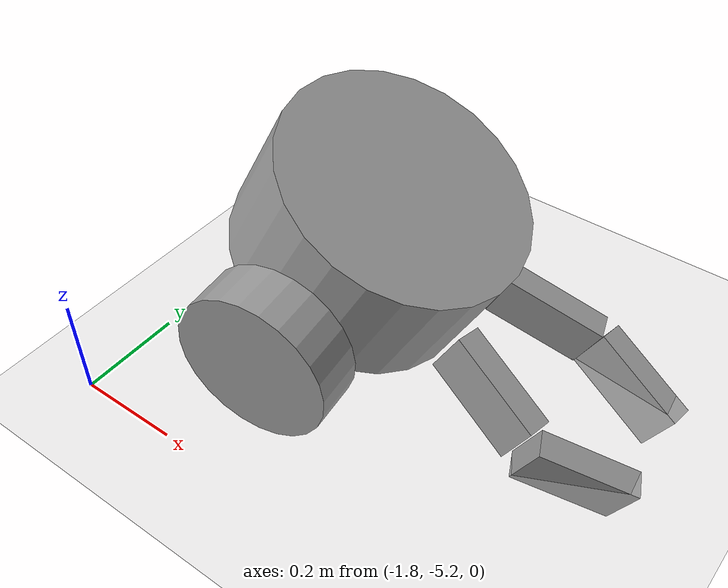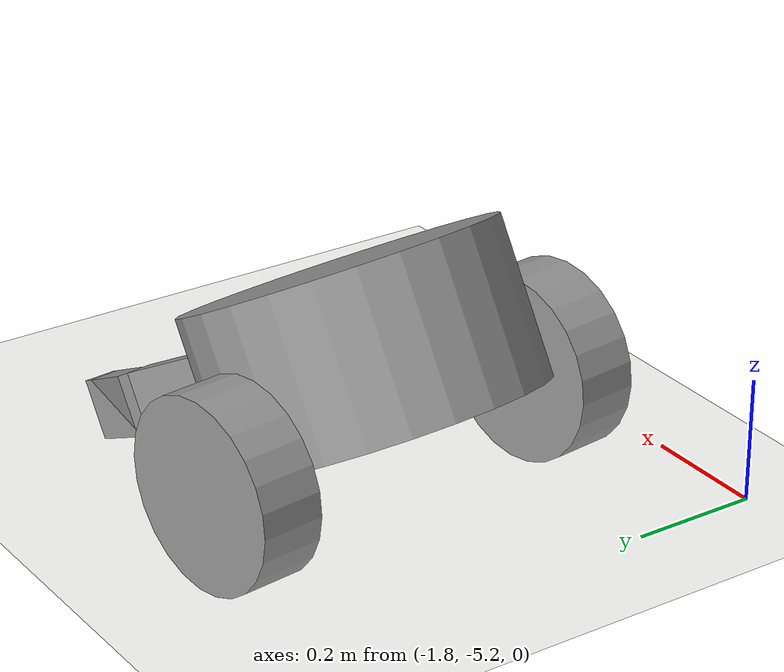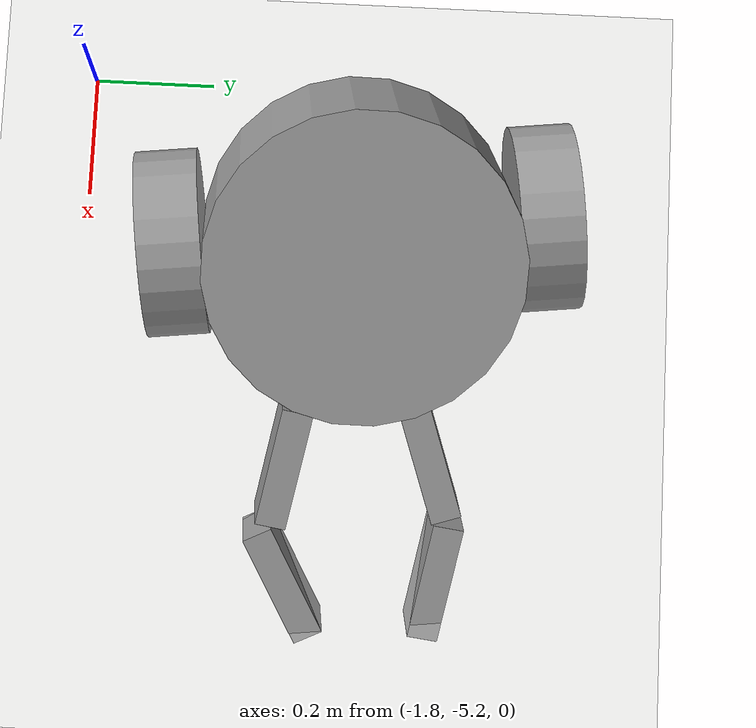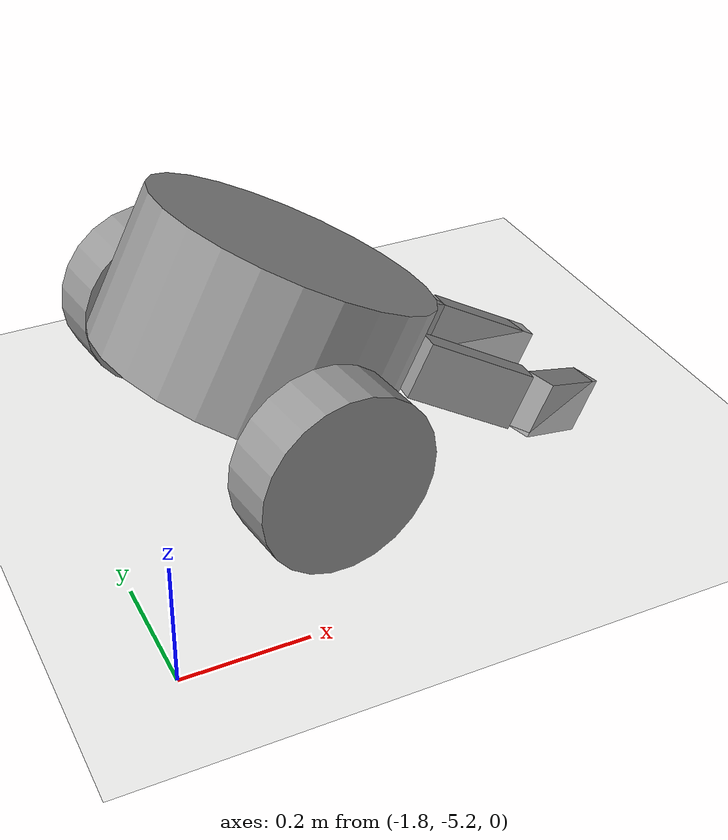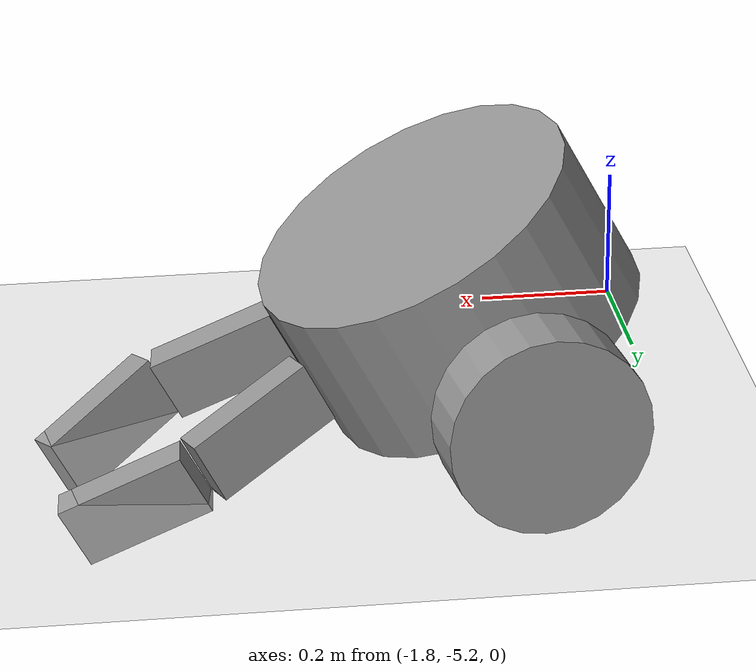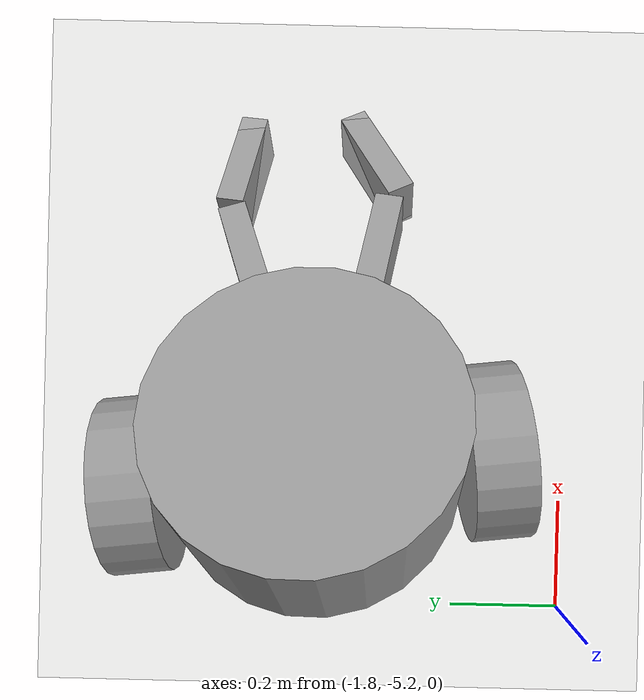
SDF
<sdf version="1.6">
 <world name="default">
  <model name="ground_plane">
   <static>1</static>
   <link name="link">
    <collision name="collision">
     <geometry><plane><normal>0 0 1</normal><size>100 100</size></plane></geometry>
     <surface><friction><ode><mu>100</mu><mu2>50</mu2></ode></friction></surface>
    </collision>
    <visual name="visual">
     <cast_shadows>0</cast_shadows>
     <geometry><plane><normal>0 0 1</normal><size>100 100</size></plane></geometry>
     <material>
      <script><uri>file://media/materials/scripts/gazebo.material</uri><name>Gazebo/Grey</name></script>
     </material>
    </visual>
   </link>
  </model>
  <model name="clawrobot">
   <link name="link_0">
    <pose>-0.255901 0.018867 0.029197 0 -0 0</pose>
    <inertial>
     <mass>1</mass>
     <inertia><ixx>0.145833</ixx><ixy>0</ixy><ixz>0</ixz><iyy>0.145833</iyy><iyz>0</iyz><izz>0.125</izz></inertia>
    </inertial>
    <visual name="visual">
     <geometry><cylinder><radius>0.25</radius><length>0.25</length></cylinder></geometry>
     <material>
      <lighting>1</lighting>
      <script><uri>file://media/materials/scripts/gazebo.material</uri><name>Gazebo/Grey</name></script>
      <shader type="pixel"><normal_map>__default__</normal_map></shader>
      <ambient>0.3 0.3 0.3 1</ambient>
      <diffuse>0.7 0.7 0.7 1</diffuse>
      <specular>0.01 0.01 0.01 1</specular>
      <emissive>0 0 0 1</emissive>
     </material>
    </visual>
    <collision name="collision">
     <geometry><cylinder><radius>0.25</radius><length>0.25</length></cylinder></geometry>
     <surface>
      <friction>
       <ode><mu>1</mu><mu2>1</mu2><fdir1>0 0 0</fdir1><slip1>0</slip1><slip2>0</slip2></ode>
       <torsional>
        <coefficient>1</coefficient>
        <patch_radius>0</patch_radius>
        <surface_radius>0</surface_radius>
        <use_patch_radius>1</use_patch_radius>
        <ode><slip>0</slip></ode>
       </torsional>
      </friction>
      <bounce><restitution_coefficient>0</restitution_coefficient><threshold>1e+06</threshold></bounce>
      <contact>
       <collide_without_contact>0</collide_without_contact>
       <collide_without_contact_bitmask>1</collide_without_contact_bitmask>
       <collide_bitmask>1</collide_bitmask>
       <ode>
        <soft_cfm>0</soft_cfm>
        <soft_erp>0.2</soft_erp>
        <kp>1e+13</kp>
        <kd>1</kd>
        <max_vel>0.01</max_vel>
        <min_depth>0</min_depth>
       </ode>
       <bullet>
        <split_impulse>1</split_impulse>
        <split_impulse_penetration_threshold>-0.01</split_impulse_penetration_threshold>
        <soft_cfm>0</soft_cfm>
        <soft_erp>0.2</soft_erp>
        <kp>1e+13</kp>
        <kd>1</kd>
       </bullet>
      </contact>
     </surface>
    </collision>
   </link>
   <link name="link_2">
    <pose>-0.255901 -0.281147 -0.083741 1.5707 -0 0</pose>
    <inertial>
     <mass>1</mass>
     <inertia><ixx>0.145833</ixx><ixy>0</ixy><ixz>0</ixz><iyy>0.145833</iyy><iyz>0</iyz><izz>0.125</izz></inertia>
    </inertial>
    <visual name="visual">
     <geometry><cylinder><radius>0.15</radius><length>0.1</length></cylinder></geometry>
     <material>
      <lighting>1</lighting>
      <script><uri>file://media/materials/scripts/gazebo.material</uri><name>Gazebo/Grey</name></script>
      <shader type="pixel"><normal_map>__default__</normal_map></shader>
      <ambient>0.3 0.3 0.3 1</ambient>
      <diffuse>0.7 0.7 0.7 1</diffuse>
      <specular>0.01 0.01 0.01 1</specular>
      <emissive>0 0 0 1</emissive>
     </material>
    </visual>
    <collision name="collision">
     <geometry><cylinder><radius>0.15</radius><length>0.1</length></cylinder></geometry>
     <surface>
      <friction>
       <ode><mu>1</mu><mu2>1</mu2><fdir1>0 0 0</fdir1><slip1>0</slip1><slip2>0</slip2></ode>
       <torsional>
        <coefficient>1</coefficient>
        <patch_radius>0</patch_radius>
        <surface_radius>0</surface_radius>
        <use_patch_radius>1</use_patch_radius>
        <ode><slip>0</slip></ode>
       </torsional>
      </friction>
      <bounce><restitution_coefficient>0</restitution_coefficient><threshold>1e+06</threshold></bounce>
      <contact>
       <collide_without_contact>0</collide_without_contact>
       <collide_without_contact_bitmask>1</collide_without_contact_bitmask>
       <collide_bitmask>1</collide_bitmask>
       <ode>
        <soft_cfm>0</soft_cfm>
        <soft_erp>0.2</soft_erp>
        <kp>1e+13</kp>
        <kd>1</kd>
        <max_vel>0.01</max_vel>
        <min_depth>0</min_depth>
       </ode>
       <bullet>
        <split_impulse>1</split_impulse>
        <split_impulse_penetration_threshold>-0.01</split_impulse_penetration_threshold>
        <soft_cfm>0</soft_cfm>
        <soft_erp>0.2</soft_erp>
        <kp>1e+13</kp>
        <kd>1</kd>
       </bullet>
      </contact>
     </surface>
    </collision>
   </link>
   <link name="link_2_clone">
    <pose>-0.255901 0.318882 -0.083741 1.5707 -0 0</pose>
    <inertial>
     <mass>1</mass>
     <inertia><ixx>0.145833</ixx><ixy>0</ixy><ixz>0</ixz><iyy>0.145833</iyy><iyz>0</iyz><izz>0.125</izz></inertia>
    </inertial>
    <visual name="visual">
     <geometry><cylinder><radius>0.15</radius><length>0.1</length></cylinder></geometry>
     <material>
      <lighting>1</lighting>
      <script><uri>file://media/materials/scripts/gazebo.material</uri><name>Gazebo/Grey</name></script>
      <shader type="pixel"><normal_map>__default__</normal_map></shader>
      <ambient>0.3 0.3 0.3 1</ambient>
      <diffuse>0.7 0.7 0.7 1</diffuse>
      <specular>0.01 0.01 0.01 1</specular>
      <emissive>0 0 0 1</emissive>
     </material>
    </visual>
    <collision name="collision">
     <geometry><cylinder><radius>0.15</radius><length>0.1</length></cylinder></geometry>
     <surface>
      <friction>
       <ode><mu>1</mu><mu2>1</mu2><fdir1>0 0 0</fdir1><slip1>0</slip1><slip2>0</slip2></ode>
       <torsional>
        <coefficient>1</coefficient>
        <patch_radius>0</patch_radius>
        <surface_radius>0</surface_radius>
        <use_patch_radius>1</use_patch_radius>
        <ode><slip>0</slip></ode>
       </torsional>
      </friction>
      <bounce><restitution_coefficient>0</restitution_coefficient><threshold>1e+06</threshold></bounce>
      <contact>
       <collide_without_contact>0</collide_without_contact>
       <collide_without_contact_bitmask>1</collide_without_contact_bitmask>
       <collide_bitmask>1</collide_bitmask>
       <ode>
        <soft_cfm>0</soft_cfm>
        <soft_erp>0.2</soft_erp>
        <kp>1e+13</kp>
        <kd>1</kd>
        <max_vel>0.01</max_vel>
        <min_depth>0</min_depth>
       </ode>
       <bullet>
        <split_impulse>1</split_impulse>
        <split_impulse_penetration_threshold>-0.01</split_impulse_penetration_threshold>
        <soft_cfm>0</soft_cfm>
        <soft_erp>0.2</soft_erp>
        <kp>1e+13</kp>
        <kd>1</kd>
       </bullet>
      </contact>
     </surface>
    </collision>
   </link>
   <link name="link_3">
    <pose>0.085126 -0.126526 0.034572 0 0 -0.293233</pose>
    <inertial>
     <mass>1</mass>
     <inertia>
      <ixx>0.166667</ixx>
      <ixy>0</ixy>
      <ixz>0</ixz>
      <iyy>0.166667</iyy>
      <iyz>0</iyz>
      <izz>0.166667</izz>
     </inertia>
    </inertial>
    <visual name="visual">
     <geometry><box><size>0.2 0.05 0.1</size></box></geometry>
     <material>
      <lighting>1</lighting>
      <script><uri>file://media/materials/scripts/gazebo.material</uri><name>Gazebo/Grey</name></script>
      <shader type="pixel"><normal_map>__default__</normal_map></shader>
      <ambient>0.3 0.3 0.3 1</ambient>
      <diffuse>0.7 0.7 0.7 1</diffuse>
      <specular>0.01 0.01 0.01 1</specular>
      <emissive>0 0 0 1</emissive>
     </material>
    </visual>
    <collision name="collision">
     <geometry><box><size>0.2 0.05 0.1</size></box></geometry>
     <surface>
      <friction>
       <ode><mu>1</mu><mu2>1</mu2><fdir1>0 0 0</fdir1><slip1>0</slip1><slip2>0</slip2></ode>
       <torsional>
        <coefficient>1</coefficient>
        <patch_radius>0</patch_radius>
        <surface_radius>0</surface_radius>
        <use_patch_radius>1</use_patch_radius>
        <ode><slip>0</slip></ode>
       </torsional>
      </friction>
      <bounce><restitution_coefficient>0</restitution_coefficient><threshold>1e+06</threshold></bounce>
      <contact>
       <collide_without_contact>0</collide_without_contact>
       <collide_without_contact_bitmask>1</collide_without_contact_bitmask>
       <collide_bitmask>1</collide_bitmask>
       <ode>
        <soft_cfm>0</soft_cfm>
        <soft_erp>0.2</soft_erp>
        <kp>1e+13</kp>
        <kd>1</kd>
        <max_vel>0.01</max_vel>
        <min_depth>0</min_depth>
       </ode>
       <bullet>
        <split_impulse>1</split_impulse>
        <split_impulse_penetration_threshold>-0.01</split_impulse_penetration_threshold>
        <soft_cfm>0</soft_cfm>
        <soft_erp>0.2</soft_erp>
        <kp>1e+13</kp>
        <kd>1</kd>
       </bullet>
      </contact>
     </surface>
    </collision>
   </link>
   <link name="link_3_clone">
    <pose>0.093783 0.107082 0.034572 -0.002709 -0.012513 0.213214</pose>
    <inertial>
     <mass>1</mass>
     <inertia>
      <ixx>0.166667</ixx>
      <ixy>0</ixy>
      <ixz>0</ixz>
      <iyy>0.166667</iyy>
      <iyz>0</iyz>
      <izz>0.166667</izz>
     </inertia>
    </inertial>
    <visual name="visual">
     <geometry><box><size>0.2 0.05 0.1</size></box></geometry>
     <material>
      <lighting>1</lighting>
      <script><uri>file://media/materials/scripts/gazebo.material</uri><name>Gazebo/Grey</name></script>
      <shader type="pixel"><normal_map>__default__</normal_map></shader>
      <ambient>0.3 0.3 0.3 1</ambient>
      <diffuse>0.7 0.7 0.7 1</diffuse>
      <specular>0.01 0.01 0.01 1</specular>
      <emissive>0 0 0 1</emissive>
     </material>
    </visual>
    <collision name="collision">
     <geometry><box><size>0.2 0.05 0.1</size></box></geometry>
     <surface>
      <friction>
       <ode><mu>1</mu><mu2>1</mu2><fdir1>0 0 0</fdir1><slip1>0</slip1><slip2>0</slip2></ode>
       <torsional>
        <coefficient>1</coefficient>
        <patch_radius>0</patch_radius>
        <surface_radius>0</surface_radius>
        <use_patch_radius>1</use_patch_radius>
        <ode><slip>0</slip></ode>
       </torsional>
      </friction>
      <bounce><restitution_coefficient>0</restitution_coefficient><threshold>1e+06</threshold></bounce>
      <contact>
       <collide_without_contact>0</collide_without_contact>
       <collide_without_contact_bitmask>1</collide_without_contact_bitmask>
       <collide_bitmask>1</collide_bitmask>
       <ode>
        <soft_cfm>0</soft_cfm>
        <soft_erp>0.2</soft_erp>
        <kp>1e+13</kp>
        <kd>1</kd>
        <max_vel>0.01</max_vel>
        <min_depth>0</min_depth>
       </ode>
       <bullet>
        <split_impulse>1</split_impulse>
        <split_impulse_penetration_threshold>-0.01</split_impulse_penetration_threshold>
        <soft_cfm>0</soft_cfm>
        <soft_erp>0.2</soft_erp>
        <kp>1e+13</kp>
        <kd>1</kd>
       </bullet>
      </contact>
     </surface>
    </collision>
   </link>
   <link name="link_3_clone_0">
    <pose>0.287516 -0.142576 0.034572 0 -0 0.359319</pose>
    <inertial>
     <mass>1</mass>
     <inertia>
      <ixx>0.166667</ixx>
      <ixy>0</ixy>
      <ixz>0</ixz>
      <iyy>0.166667</iyy>
      <iyz>0</iyz>
      <izz>0.166667</izz>
     </inertia>
    </inertial>
    <visual name="visual">
     <geometry><box><size>0.2 0.05 0.1</size></box></geometry>
     <material>
      <lighting>1</lighting>
      <script><uri>file://media/materials/scripts/gazebo.material</uri><name>Gazebo/Grey</name></script>
      <shader type="pixel"><normal_map>__default__</normal_map></shader>
      <ambient>0.3 0.3 0.3 1</ambient>
      <diffuse>0.7 0.7 0.7 1</diffuse>
      <specular>0.01 0.01 0.01 1</specular>
      <emissive>0 0 0 1</emissive>
     </material>
    </visual>
    <collision name="collision">
     <geometry><box><size>0.2 0.05 0.1</size></box></geometry>
     <surface>
      <friction>
       <ode><mu>1</mu><mu2>1</mu2><fdir1>0 0 0</fdir1><slip1>0</slip1><slip2>0</slip2></ode>
       <torsional>
        <coefficient>1</coefficient>
        <patch_radius>0</patch_radius>
        <surface_radius>0</surface_radius>
        <use_patch_radius>1</use_patch_radius>
        <ode><slip>0</slip></ode>
       </torsional>
      </friction>
      <bounce><restitution_coefficient>0</restitution_coefficient><threshold>1e+06</threshold></bounce>
      <contact>
       <collide_without_contact>0</collide_without_contact>
       <collide_without_contact_bitmask>1</collide_without_contact_bitmask>
       <collide_bitmask>1</collide_bitmask>
       <ode>
        <soft_cfm>0</soft_cfm>
        <soft_erp>0.2</soft_erp>
        <kp>1e+13</kp>
        <kd>1</kd>
        <max_vel>0.01</max_vel>
        <min_depth>0</min_depth>
       </ode>
       <bullet>
        <split_impulse>1</split_impulse>
        <split_impulse_penetration_threshold>-0.01</split_impulse_penetration_threshold>
        <soft_cfm>0</soft_cfm>
        <soft_erp>0.2</soft_erp>
        <kp>1e+13</kp>
        <kd>1</kd>
       </bullet>
      </contact>
     </surface>
    </collision>
   </link>
   <link name="link_3_clone_1">
    <pose>0.301281 0.105424 0.034572 0 0 -0.267111</pose>
    <inertial>
     <mass>1</mass>
     <inertia>
      <ixx>0.166667</ixx>
      <ixy>0</ixy>
      <ixz>0</ixz>
      <iyy>0.166667</iyy>
      <iyz>0</iyz>
      <izz>0.166667</izz>
     </inertia>
    </inertial>
    <visual name="visual">
     <geometry><box><size>0.2 0.05 0.1</size></box></geometry>
     <material>
      <lighting>1</lighting>
      <script><uri>file://media/materials/scripts/gazebo.material</uri><name>Gazebo/Grey</name></script>
      <shader type="pixel"><normal_map>__default__</normal_map></shader>
      <ambient>0.3 0.3 0.3 1</ambient>
      <diffuse>0.7 0.7 0.7 1</diffuse>
      <specular>0.01 0.01 0.01 1</specular>
      <emissive>0 0 0 1</emissive>
     </material>
    </visual>
    <collision name="collision">
     <geometry><box><size>0.2 0.05 0.1</size></box></geometry>
     <surface>
      <friction>
       <ode><mu>1</mu><mu2>1</mu2><fdir1>0 0 0</fdir1><slip1>0</slip1><slip2>0</slip2></ode>
       <torsional>
        <coefficient>1</coefficient>
        <patch_radius>0</patch_radius>
        <surface_radius>0</surface_radius>
        <use_patch_radius>1</use_patch_radius>
        <ode><slip>0</slip></ode>
       </torsional>
      </friction>
      <bounce><restitution_coefficient>0</restitution_coefficient><threshold>1e+06</threshold></bounce>
      <contact>
       <collide_without_contact>0</collide_without_contact>
       <collide_without_contact_bitmask>1</collide_without_contact_bitmask>
       <collide_bitmask>1</collide_bitmask>
       <ode>
        <soft_cfm>0</soft_cfm>
        <soft_erp>0.2</soft_erp>
        <kp>1e+13</kp>
        <kd>1</kd>
        <max_vel>0.01</max_vel>
        <min_depth>0</min_depth>
       </ode>
       <bullet>
        <split_impulse>1</split_impulse>
        <split_impulse_penetration_threshold>-0.01</split_impulse_penetration_threshold>
        <soft_cfm>0</soft_cfm>
        <soft_erp>0.2</soft_erp>
        <kp>1e+13</kp>
        <kd>1</kd>
       </bullet>
      </contact>
     </surface>
    </collision>
   </link>
   <joint name="link_0_JOINT_0" type="revolute">
    <parent>link_0</parent>
    <child>link_2</child>
    <axis>
     <xyz>0 0 1</xyz>
     <use_parent_model_frame>0</use_parent_model_frame>
     <limit>
      <lower>-1.79769e+308</lower>
      <upper>1.79769e+308</upper>
      <effort>-1</effort>
      <velocity>-1</velocity>
     </limit>
     <dynamics>
      <spring_reference>0</spring_reference>
      <spring_stiffness>0</spring_stiffness>
      <damping>0</damping>
     </dynamics>
    </axis>
    <physics>
     <ode><limit><cfm>0</cfm><erp>0.2</erp></limit><suspension><cfm>0</cfm><erp>0.2</erp></suspension></ode>
    </physics>
   </joint>
   <joint name="link_0_JOINT_1" type="revolute">
    <parent>link_0</parent>
    <child>link_2_clone</child>
    <axis>
     <xyz>0 0 1</xyz>
     <use_parent_model_frame>0</use_parent_model_frame>
     <limit>
      <lower>-1.79769e+308</lower>
      <upper>1.79769e+308</upper>
      <effort>-1</effort>
      <velocity>-1</velocity>
     </limit>
     <dynamics>
      <spring_reference>0</spring_reference>
      <spring_stiffness>0</spring_stiffness>
      <damping>0</damping>
     </dynamics>
    </axis>
    <physics>
     <ode><limit><cfm>0</cfm><erp>0.2</erp></limit><suspension><cfm>0</cfm><erp>0.2</erp></suspension></ode>
    </physics>
   </joint>
   <joint name="link_0_JOINT_2" type="revolute">
    <parent>link_0</parent>
    <child>link_3</child>
    <axis>
     <xyz>1 0 0</xyz>
     <use_parent_model_frame>0</use_parent_model_frame>
     <limit>
      <lower>-1.79769e+308</lower>
      <upper>1.79769e+308</upper>
      <effort>-1</effort>
      <velocity>-1</velocity>
     </limit>
     <dynamics>
      <spring_reference>0</spring_reference>
      <spring_stiffness>0</spring_stiffness>
      <damping>0</damping>
     </dynamics>
    </axis>
    <physics>
     <ode><limit><cfm>0</cfm><erp>0.2</erp></limit><suspension><cfm>0</cfm><erp>0.2</erp></suspension></ode>
    </physics>
   </joint>
   <joint name="link_0_JOINT_4" type="revolute">
    <parent>link_0</parent>
    <child>link_3_clone</child>
    <axis>
     <xyz>1 0 0</xyz>
     <use_parent_model_frame>0</use_parent_model_frame>
     <limit>
      <lower>-1.79769e+308</lower>
      <upper>1.79769e+308</upper>
      <effort>-1</effort>
      <velocity>-1</velocity>
     </limit>
     <dynamics>
      <spring_reference>0</spring_reference>
      <spring_stiffness>0</spring_stiffness>
      <damping>0</damping>
     </dynamics>
    </axis>
    <physics>
     <ode><limit><cfm>0</cfm><erp>0.2</erp></limit><suspension><cfm>0</cfm><erp>0.2</erp></suspension></ode>
    </physics>
   </joint>
   <joint name="link_3_JOINT_3" type="revolute">
    <parent>link_3</parent>
    <child>link_3_clone_0</child>
    <axis>
     <xyz>1 0 0</xyz>
     <use_parent_model_frame>0</use_parent_model_frame>
     <limit>
      <lower>-1.79769e+308</lower>
      <upper>1.79769e+308</upper>
      <effort>-1</effort>
      <velocity>-1</velocity>
     </limit>
     <dynamics>
      <spring_reference>0</spring_reference>
      <spring_stiffness>0</spring_stiffness>
      <damping>0</damping>
     </dynamics>
    </axis>
    <physics>
     <ode><limit><cfm>0</cfm><erp>0.2</erp></limit><suspension><cfm>0</cfm><erp>0.2</erp></suspension></ode>
    </physics>
   </joint>
   <joint name="link_3_clone_JOINT_5" type="revolute">
    <parent>link_3_clone</parent>
    <child>link_3_clone_1</child>
    <axis>
     <xyz>1 0 0</xyz>
     <use_parent_model_frame>0</use_parent_model_frame>
     <limit>
      <lower>-1.79769e+308</lower>
      <upper>1.79769e+308</upper>
      <effort>-1</effort>
      <velocity>-1</velocity>
     </limit>
     <dynamics>
      <spring_reference>0</spring_reference>
      <spring_stiffness>0</spring_stiffness>
      <damping>0</damping>
     </dynamics>
    </axis>
    <physics>
     <ode><limit><cfm>0</cfm><erp>0.2</erp></limit><suspension><cfm>0</cfm><erp>0.2</erp></suspension></ode>
    </physics>
   </joint>
   <static>0</static>
   <pose>-1.25887 -4.72978 0.101511 -6e-06 0.497341 0.117498</pose>
  </model>
 </world>
</sdf>
